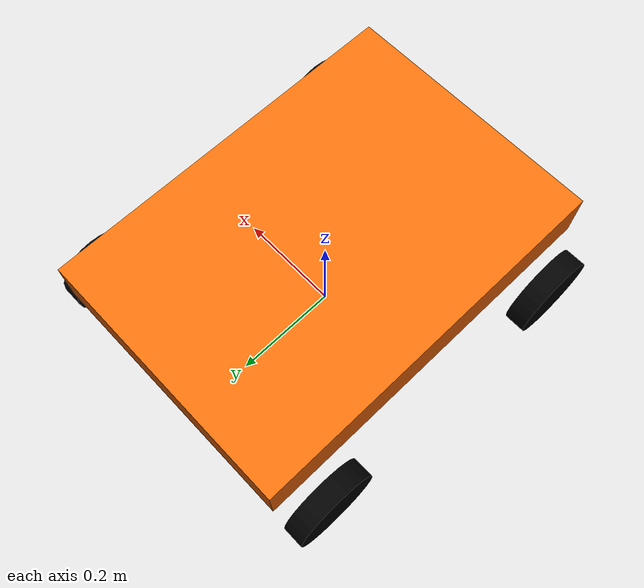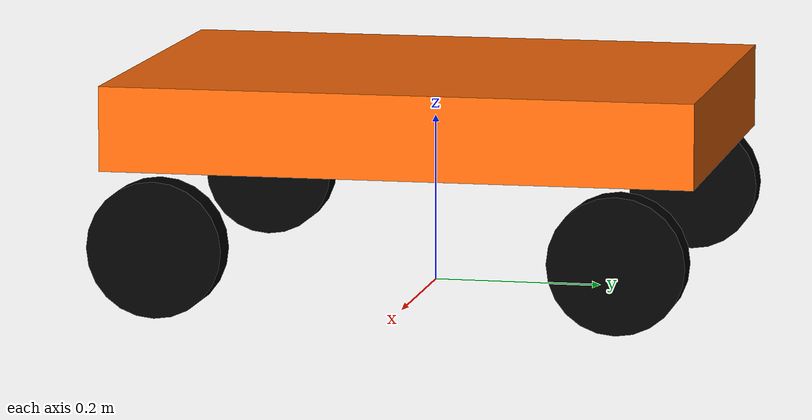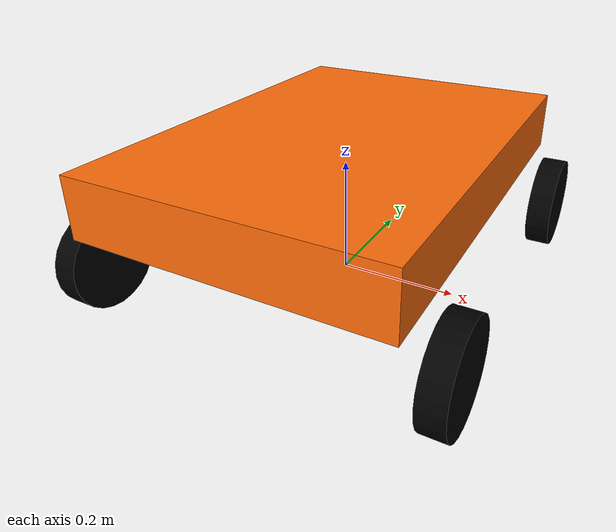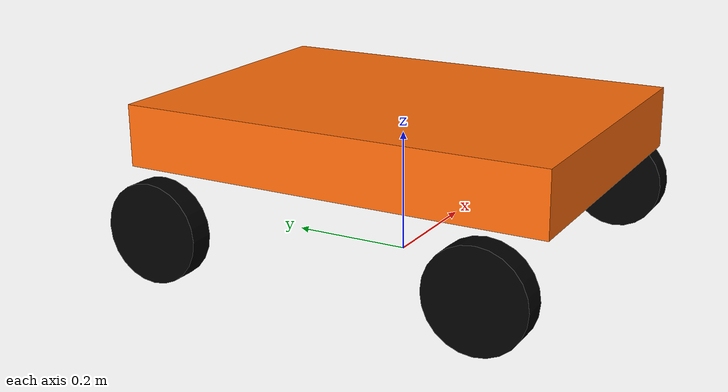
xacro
<?xml version="1.0"?>
<robot name="mrobot" xmlns:xacro="http://www.ros.org/wiki/xacro">

    <xacro:property name="M_PI" value="3.1415926" />
    <xacro:property name="mass" value="1" />
    <xacro:property name="base_link_length" value="0.5" />
    <xacro:property name="base_link_width" value="0.7" />
    <xacro:property name="base_link_height" value="0.1" />
    <xacro:property name="wheel_radius" value="0.08" />
    <xacro:property name="wheel_length" value="0.04" />
    <xacro:property name="wheel_joint_x" value="0.27" />
    <xacro:property name="wheel_joint_y" value="0.27" />
    <xacro:property name="wheel_joint_z" value="0.08" />

    <!-- 导入所有gazebo标签及插件 -->
    <xacro:include filename="$(find agv_robot)/urdf/mrobot.gazebo" />
    <!-- 导入颜色 -->
    <xacro:include filename="$(find agv_robot)/urdf/materials.xacro" />

    <xacro:macro name="default_inertial" params="mass">
        <inertial>
            <origin xyz="0 0 0" rpt="0 0 0" />
            <mass value="${mass}" />
            <inertia ixx="${mass/10}" ixy="0" ixz="0"
                     iyy="${mass/10}" iyz="0"
                     izz="${mass/10}" />
        </inertial>
    </xacro:macro>

    <link name="world"/>
    <joint name="fixed" type="fixed">
        <parent link="world"/>
        <child link="base_link"/>
    </joint>

    <!--base_link-->
    <link name="base_link" >
        <collision>
            <origin xyz="0 0 ${wheel_radius*2 + base_link_height/2}" rpy="0 0 0" />
            <geometry>
                <box size="${base_link_length}
                           ${base_link_width}
                           ${base_link_height}" />
            </geometry>
        </collision>

        <visual>
            <origin xyz="0 0 ${wheel_radius*2 + base_link_height/2}" rpy="0 0 0" />
            <geometry>
                <box size="${base_link_length}
                           ${base_link_width}
                           ${base_link_height}" />
            </geometry>
            <material name="orange">
                <color rgba="${255/255} ${108/255} ${10/255} 1.0"/>
            </material>
        </visual>
        <xacro:default_inertial mass="${mass}" />
    </link>

  <gazebo reference="base_link">
    <material>Gazebo/orange</material>
  </gazebo>

    <joint name="joint1" type="continuous">
        <parent link="base_link" />
        <child link="wheel1_link" />
        <origin xyz="0 0 0"
                rpy="0 0 0" />
        <axis xyz="0 1 0"/>
    </joint>

    <link name="wheel1_link">
        <collision>
            <origin xyz="${wheel_joint_x+wheel_length/2}
                     ${wheel_joint_y}
                     ${wheel_joint_z}" rpy="0 ${M_PI/2} 0" />
            <geometry>
                <cylinder length="${wheel_length}"
                          radius="${wheel_radius}" />
            </geometry>
        </collision>

        <visual>
            <origin xyz="${wheel_joint_x+wheel_length/2}
                     ${wheel_joint_y}
                     ${wheel_joint_z}"
                    rpy="0 ${M_PI/2} 0" />
            <geometry>
                <cylinder length="${wheel_length}"
                          radius="${wheel_radius}" />
            </geometry>
            <material name="black">
   	 	<color rgba="0.0 0.0 0.0 1.0"/>
  	    </material>
         </visual>
         <xacro:default_inertial mass="${mass}" />
    </link>

  <gazebo reference="wheel1_link">
    <material>Gazebo/black</material>
  </gazebo>

    <joint name="joint2" type="continuous">
        <parent link="base_link" />
        <child link="wheel2_link" />
        <origin xyz="0 0 0"
                rpy="0 0 0" />
        <axis xyz="0 1 0"/>
    </joint>

    <link name="wheel2_link">
        <collision>
            <origin xyz="-${wheel_joint_x+wheel_length/2}
                     ${wheel_joint_y}
                     ${wheel_joint_z}" rpy="0 ${M_PI/2} 0" />
            <geometry>
                <cylinder length="${wheel_length}"
                          radius="${wheel_radius}" />
            </geometry>
        </collision>

        <visual>
            <origin xyz="-${wheel_joint_x+wheel_length/2}
                     ${wheel_joint_y}
                     ${wheel_joint_z}"
                    rpy="0 ${M_PI/2} 0" />
            <geometry>
                <cylinder length="${wheel_length}"
                          radius="${wheel_radius}" />
            </geometry>
            <material name="black">
    		<color rgba="0.0 0.0 0.0 1.0"/>
            </material>
         </visual>
         <xacro:default_inertial mass="${mass}" />
    </link>

  <gazebo reference="wheel2_link">
    <material>Gazebo/black</material>
  </gazebo>

    <joint name="joint3" type="continuous">
        <parent link="base_link" />
        <child link="wheel3_link" />
        <origin xyz="0 0 0"
                rpy="0 0 0" />
        <axis xyz="0 1 0"/>
    </joint>

    <link name="wheel3_link">
        <collision>
            <origin xyz="-${wheel_joint_x+wheel_length/2}
                     -${wheel_joint_y}
                     ${wheel_joint_z}" rpy="0 ${M_PI/2} 0" />
            <geometry>
                <cylinder length="${wheel_length}"
                          radius="${wheel_radius}" />
            </geometry>
        </collision>

        <visual>
            <origin xyz="-${wheel_joint_x+wheel_length/2}
                     -${wheel_joint_y}
                     ${wheel_joint_z}"
                    rpy="0 ${M_PI/2} 0" />
            <geometry>
                <cylinder length="${wheel_length}"
                          radius="${wheel_radius}" />
            </geometry>
            <material name="black">
    		<color rgba="0.0 0.0 0.0 1.0"/>
  	    </material>
         </visual>
         <xacro:default_inertial mass="${mass}" />
    </link>

<gazebo reference="wheel3_link">
    <material>Gazebo/black</material>
  </gazebo>

    <joint name="joint4" type="continuous">
        <parent link="base_link" />
        <child link="wheel4_link" />
        <origin xyz="0 0 0"
                rpy="0 0 0" />
        <axis xyz="0 1 0"/>
    </joint>

    <link name="wheel4_link">
        <collision>
            <origin xyz="${wheel_joint_x+wheel_length/2}
                     -${wheel_joint_y}
                     ${wheel_joint_z}" rpy="0 ${M_PI/2} 0" />
            <geometry>
                <cylinder length="${wheel_length}"
                          radius="${wheel_radius}" />
            </geometry>
        </collision>

        <visual>
            <origin xyz="${wheel_joint_x+wheel_length/2}
                     -${wheel_joint_y}
                     ${wheel_joint_z}"
                    rpy="0 ${M_PI/2} 0" />
            <geometry>
                <cylinder length="${wheel_length}"
                          radius="${wheel_radius}" />
            </geometry>
            <material name="black">
    		<color rgba="0.0 0.0 0.0 1.0"/>
  	    </material>
         </visual>
         <xacro:default_inertial mass="${mass}" />
    </link>

<gazebo reference="wheel4_link">
    <material>Gazebo/black</material>
  </gazebo>

    <transmission name="tran1">
        <type>transmission_interface/SimpleTransmission</type>
        <joint name="joint1">
            <hardwareInterface>hardware_interface/EffortJointInterface</hardwareInterface>
        </joint>
        <actuator name="motor1">
            <hardwareInterface>hardware_interface/EffortJointInterface</hardwareInterface>
            <mechanicalReduction>1</mechanicalReduction>
        </actuator>
    </transmission>

    <transmission name="tran2">
        <type>transmission_interface/SimpleTransmission</type>
        <joint name="joint2">
            <hardwareInterface>hardware_interface/EffortJointInterface</hardwareInterface>
        </joint>
        <actuator name="motor2">
            <hardwareInterface>hardware_interface/EffortJointInterface</hardwareInterface>
            <mechanicalReduction>1</mechanicalReduction>
        </actuator>
    </transmission>

    <transmission name="tran3">
        <type>transmission_interface/SimpleTransmission</type>
        <joint name="joint3">
            <hardwareInterface>hardware_interface/EffortJointInterface</hardwareInterface>
        </joint>
        <actuator name="motor3">
            <hardwareInterface>hardware_interface/EffortJointInterface</hardwareInterface>
            <mechanicalReduction>1</mechanicalReduction>
        </actuator>
    </transmission>

    <transmission name="tran4">
        <type>transmission_interface/SimpleTransmission</type>
        <joint name="joint4">
            <hardwareInterface>hardware_interface/EffortJointInterface</hardwareInterface>
        </joint>
        <actuator name="motor4">
            <hardwareInterface>hardware_interface/EffortJointInterface</hardwareInterface>
            <mechanicalReduction>1</mechanicalReduction>
        </actuator>
    </transmission>
</robot>
